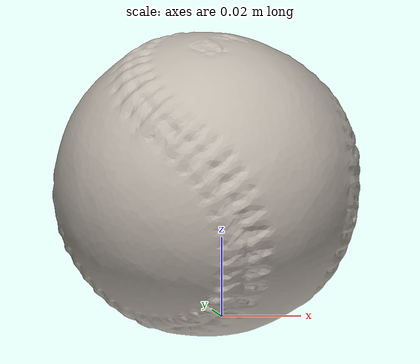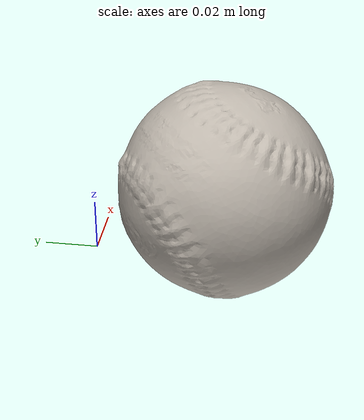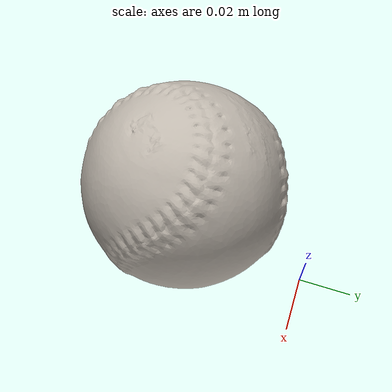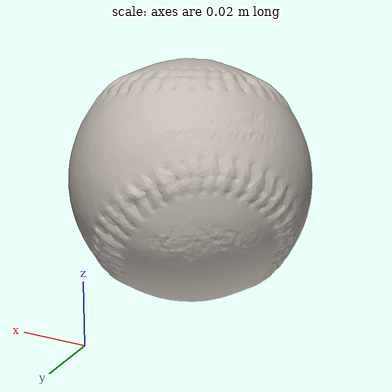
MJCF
<mujoco model="baseball">
  <compiler angle="radian" meshdir="assets" texturedir="assets"/>
    <default>
        <default class="ycb_col">
            <geom contype="1" conaffinity="1" group="3" rgba=".4 .5 .6 1"/>
        </default>
        <default class="ycb_viz">
            <geom contype="0" conaffinity="0" type="mesh" mass="0"/>
        </default>
    </default>
  <asset>
    <texture type="2d" name="baseball_tex" file="texture_map.png"/>
    <material name="baseball_mat" texture="baseball_tex" specular="0.5" shininess="0.5"/>
    <mesh file="textured.obj" name="baseball"/>
    <mesh file="textured_collision_0.obj" name="baseball_collision_0"/>
  </asset>
  <worldbody>
      <geom material="baseball_mat" mesh="baseball" class="ycb_viz"/>
      <geom mesh="baseball_collision_0" class="ycb_col" conaffinity="1" condim="4" friction="0.1 0.1 0.1" mass="0.13799999999999998" rgba="1 1 1 1" solimp="0.99 0.99 0.01" solref=".001 0.1" type="mesh" group="3"/>
  </worldbody>
</mujoco>
